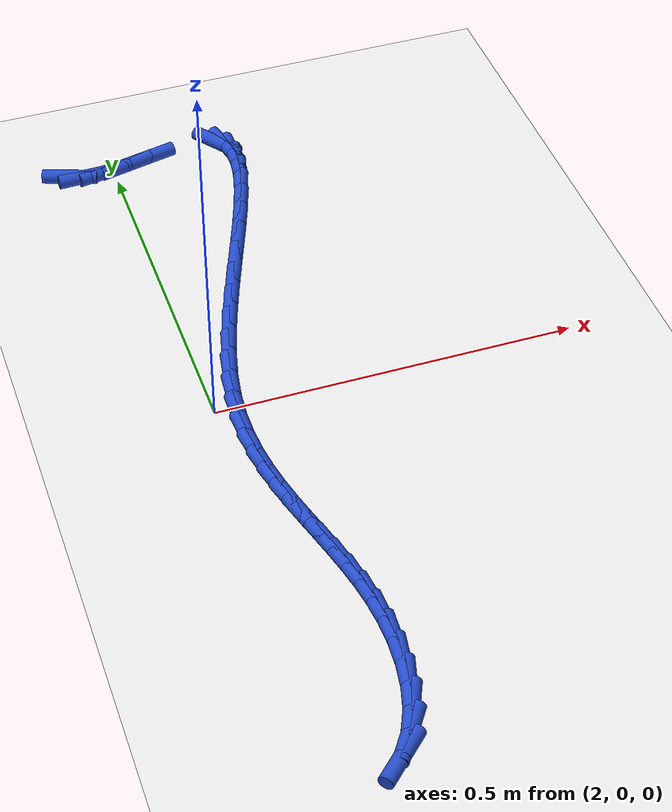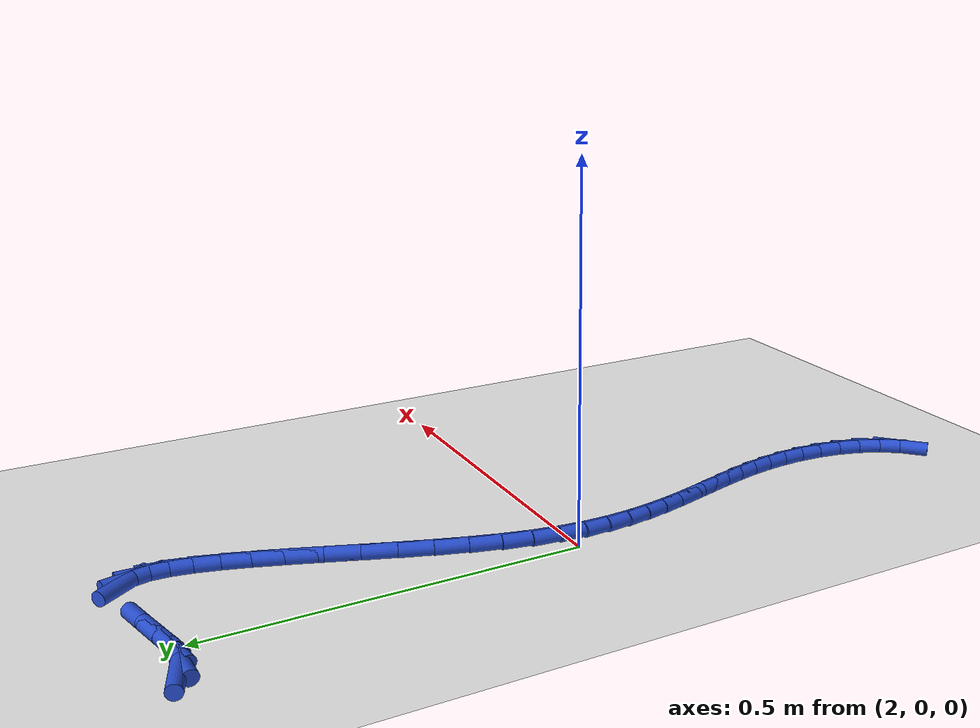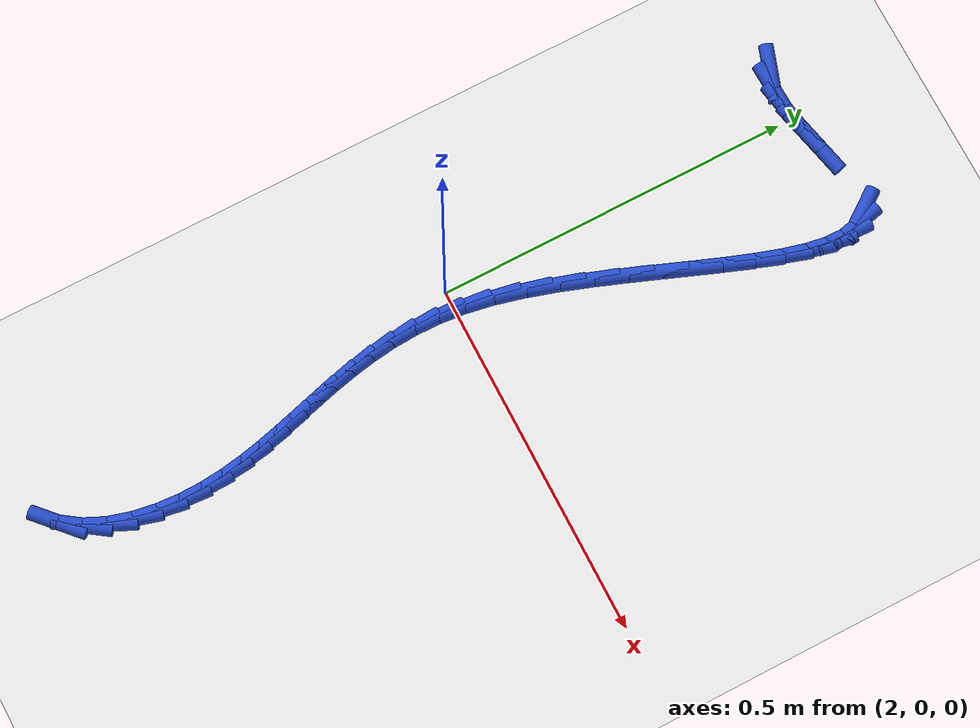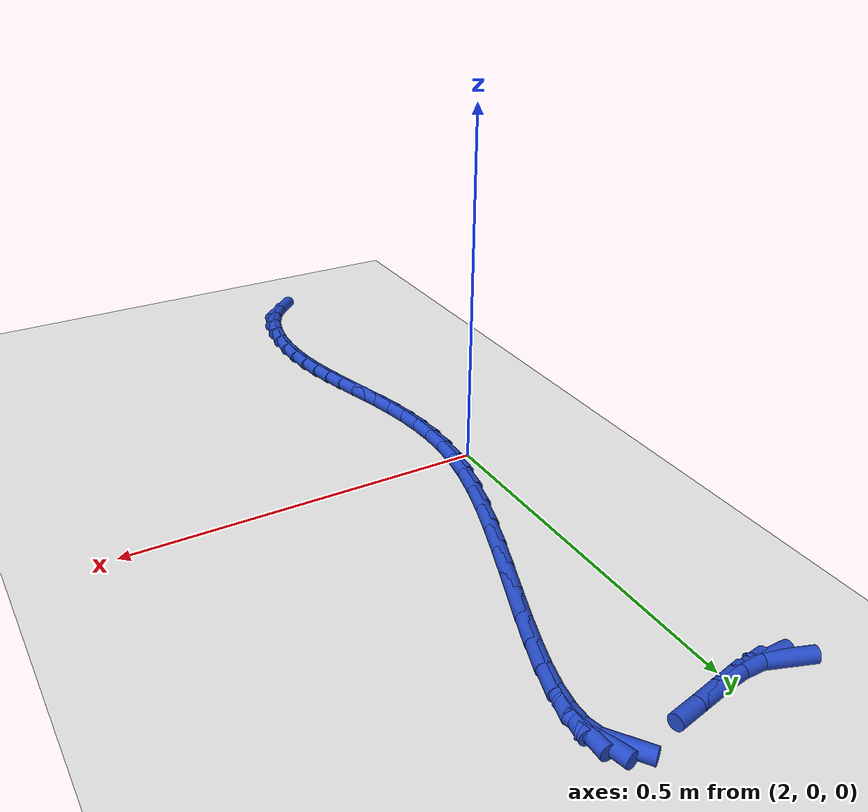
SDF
<sdf version="1.6">
 <world name="default">
  <model name="ground_plane">
   <static>1</static>
   <link name="link">
    <collision name="collision">
     <geometry><plane><normal>0 0 1</normal><size>100 100</size></plane></geometry>
     <surface><friction><ode><mu>100</mu><mu2>50</mu2></ode></friction></surface>
    </collision>
    <visual name="visual">
     <cast_shadows>0</cast_shadows>
     <geometry><plane><normal>0 0 1</normal><size>100 100</size></plane></geometry>
     <material>
      <script><uri>file://media/materials/scripts/gazebo.material</uri><name>Gazebo/WhiteGlow</name></script>
     </material>
    </visual>
   </link>
  </model>
  <model name="line">
   <link name="link_96">
    <pose>1.9337608960405697 0.5235101013731505 0.01 0 1.57 -0.3344039764433483</pose>
    <collision name="collision">
     <geometry><cylinder><radius>0.01</radius><length>0.08</length></cylinder></geometry>
    </collision>
    <visual name="visual">
     <material>
      <script><name>Gazebo/Blue</name><uri>file://media/materials/scripts/gazebo.material</uri></script>
     </material>
     <geometry><cylinder><radius>0.01</radius><length>0.08</length></cylinder></geometry>
    </visual>
   </link>
   <link name="link_97">
    <pose>1.9553031743161284 0.5160251721861439 0.01 0 1.57 0.023197153051160827</pose>
    <collision name="collision">
     <geometry><cylinder><radius>0.01</radius><length>0.08</length></cylinder></geometry>
    </collision>
    <visual name="visual">
     <material>
      <script><name>Gazebo/Blue</name><uri>file://media/materials/scripts/gazebo.material</uri></script>
     </material>
     <geometry><cylinder><radius>0.01</radius><length>0.08</length></cylinder></geometry>
    </visual>
   </link>
   <link name="link_98">
    <pose>1.9846540551637126 0.5167061512124672 0.01 0 1.57 0.17221469607655193</pose>
    <collision name="collision">
     <geometry><cylinder><radius>0.01</radius><length>0.08</length></cylinder></geometry>
    </collision>
    <visual name="visual">
     <material>
      <script><name>Gazebo/Blue</name><uri>file://media/materials/scripts/gazebo.material</uri></script>
     </material>
     <geometry><cylinder><radius>0.01</radius><length>0.08</length></cylinder></geometry>
    </visual>
   </link>
   <link name="link_99">
    <pose>2.0188290393591095 0.522650467565038 0.01 0 1.57 0.22620210388771186</pose>
    <collision name="collision">
     <geometry><cylinder><radius>0.01</radius><length>0.08</length></cylinder></geometry>
    </collision>
    <visual name="visual">
     <material>
      <script><name>Gazebo/Blue</name><uri>file://media/materials/scripts/gazebo.material</uri></script>
     </material>
     <geometry><cylinder><radius>0.01</radius><length>0.08</length></cylinder></geometry>
    </visual>
   </link>
   <link name="link_100">
    <pose>2.054819492721754 0.5309333390709774 0.01 0 1.57 0.2176804888692819</pose>
    <collision name="collision">
     <geometry><cylinder><radius>0.01</radius><length>0.08</length></cylinder></geometry>
    </collision>
    <visual name="visual">
     <material>
      <script><name>Gazebo/Blue</name><uri>file://media/materials/scripts/gazebo.material</uri></script>
     </material>
     <geometry><cylinder><radius>0.01</radius><length>0.08</length></cylinder></geometry>
    </visual>
   </link>
   <link name="link_104">
    <pose>2.1606644630583784 0.5326191293171222 0.01 0 1.57 -0.9420285430388501</pose>
    <collision name="collision">
     <geometry><cylinder><radius>0.01</radius><length>0.08</length></cylinder></geometry>
    </collision>
    <visual name="visual">
     <material>
      <script><name>Gazebo/Blue</name><uri>file://media/materials/scripts/gazebo.material</uri></script>
     </material>
     <geometry><cylinder><radius>0.01</radius><length>0.08</length></cylinder></geometry>
    </visual>
   </link>
   <link name="link_105">
    <pose>2.1709644000544177 0.5184558672973515 0.01 0 1.57 -1.3389137282480488</pose>
    <collision name="collision">
     <geometry><cylinder><radius>0.01</radius><length>0.08</length></cylinder></geometry>
    </collision>
    <visual name="visual">
     <material>
      <script><name>Gazebo/Blue</name><uri>file://media/materials/scripts/gazebo.material</uri></script>
     </material>
     <geometry><cylinder><radius>0.01</radius><length>0.08</length></cylinder></geometry>
    </visual>
   </link>
   <link name="link_106">
    <pose>2.175563557976643 0.498978643013999 0.01 0 1.57 1.5537375964672842</pose>
    <collision name="collision">
     <geometry><cylinder><radius>0.01</radius><length>0.08</length></cylinder></geometry>
    </collision>
    <visual name="visual">
     <material>
      <script><name>Gazebo/Blue</name><uri>file://media/materials/scripts/gazebo.material</uri></script>
     </material>
     <geometry><cylinder><radius>0.01</radius><length>0.08</length></cylinder></geometry>
    </visual>
   </link>
   <link name="link_107">
    <pose>2.175149951770511 0.4747349814066913 0.01 0 1.57 1.405832487593542</pose>
    <collision name="collision">
     <geometry><cylinder><radius>0.01</radius><length>0.08</length></cylinder></geometry>
    </collision>
    <visual name="visual">
     <material>
      <script><name>Gazebo/Blue</name><uri>file://media/materials/scripts/gazebo.material</uri></script>
     </material>
     <geometry><cylinder><radius>0.01</radius><length>0.08</length></cylinder></geometry>
    </visual>
   </link>
   <link name="link_108">
    <pose>2.170411596381479 0.44627240741505475 0.01 0 1.57 1.3158378055779596</pose>
    <collision name="collision">
     <geometry><cylinder><radius>0.01</radius><length>0.08</length></cylinder></geometry>
    </collision>
    <visual name="visual">
     <material>
      <script><name>Gazebo/Blue</name><uri>file://media/materials/scripts/gazebo.material</uri></script>
     </material>
     <geometry><cylinder><radius>0.01</radius><length>0.08</length></cylinder></geometry>
    </visual>
   </link>
   <link name="link_109">
    <pose>2.162036506755003 0.4141384459787166 0.01 0 1.57 1.260031044059633</pose>
    <collision name="collision">
     <geometry><cylinder><radius>0.01</radius><length>0.08</length></cylinder></geometry>
    </collision>
    <visual name="visual">
     <material>
      <script><name>Gazebo/Blue</name><uri>file://media/materials/scripts/gazebo.material</uri></script>
     </material>
     <geometry><cylinder><radius>0.01</radius><length>0.08</length></cylinder></geometry>
    </visual>
   </link>
   <link name="link_110">
    <pose>2.150712697836539 0.37888062203730316 0.01 0 1.57 1.2260783170879772</pose>
    <collision name="collision">
     <geometry><cylinder><radius>0.01</radius><length>0.08</length></cylinder></geometry>
    </collision>
    <visual name="visual">
     <material>
      <script><name>Gazebo/Blue</name><uri>file://media/materials/scripts/gazebo.material</uri></script>
     </material>
     <geometry><cylinder><radius>0.01</radius><length>0.08</length></cylinder></geometry>
    </visual>
   </link>
   <link name="link_111">
    <pose>2.1371281845715444 0.3410464605304411 0.01 0 1.57 1.207446073874159</pose>
    <collision name="collision">
     <geometry><cylinder><radius>0.01</radius><length>0.08</length></cylinder></geometry>
    </collision>
    <visual name="visual">
     <material>
      <script><name>Gazebo/Blue</name><uri>file://media/materials/scripts/gazebo.material</uri></script>
     </material>
     <geometry><cylinder><radius>0.01</radius><length>0.08</length></cylinder></geometry>
    </visual>
   </link>
   <link name="link_112">
    <pose>2.1219709819054757 0.3011834863977564 0.01 0 1.57 1.2006710066758675</pose>
    <collision name="collision">
     <geometry><cylinder><radius>0.01</radius><length>0.08</length></cylinder></geometry>
    </collision>
    <visual name="visual">
     <material>
      <script><name>Gazebo/Blue</name><uri>file://media/materials/scripts/gazebo.material</uri></script>
     </material>
     <geometry><cylinder><radius>0.01</radius><length>0.08</length></cylinder></geometry>
    </visual>
   </link>
   <link name="link_113">
    <pose>2.1059291047837894 0.25983922457887687 0.01 0 1.57 1.2040808686634246</pose>
    <collision name="collision">
     <geometry><cylinder><radius>0.01</radius><length>0.08</length></cylinder></geometry>
    </collision>
    <visual name="visual">
     <material>
      <script><name>Gazebo/Blue</name><uri>file://media/materials/scripts/gazebo.material</uri></script>
     </material>
     <geometry><cylinder><radius>0.01</radius><length>0.08</length></cylinder></geometry>
    </visual>
   </link>
   <link name="link_114">
    <pose>2.0896905681519424 0.2175612000134286 0.01 0 1.57 1.2172123511746096</pose>
    <collision name="collision">
     <geometry><cylinder><radius>0.01</radius><length>0.08</length></cylinder></geometry>
    </collision>
    <visual name="visual">
     <material>
      <script><name>Gazebo/Blue</name><uri>file://media/materials/scripts/gazebo.material</uri></script>
     </material>
     <geometry><cylinder><radius>0.01</radius><length>0.08</length></cylinder></geometry>
    </visual>
   </link>
   <link name="link_115">
    <pose>2.07394338695539 0.1748969376410376 0.01 0 1.57 1.2405966154802832</pose>
    <collision name="collision">
     <geometry><cylinder><radius>0.01</radius><length>0.08</length></cylinder></geometry>
    </collision>
    <visual name="visual">
     <material>
      <script><name>Gazebo/Blue</name><uri>file://media/materials/scripts/gazebo.material</uri></script>
     </material>
     <geometry><cylinder><radius>0.01</radius><length>0.08</length></cylinder></geometry>
    </visual>
   </link>
   <link name="link_116">
    <pose>2.05937557613959 0.13239396240133164 0.01 0 1.57 1.27578337887542</pose>
    <collision name="collision">
     <geometry><cylinder><radius>0.01</radius><length>0.08</length></cylinder></geometry>
    </collision>
    <visual name="visual">
     <material>
      <script><name>Gazebo/Blue</name><uri>file://media/materials/scripts/gazebo.material</uri></script>
     </material>
     <geometry><cylinder><radius>0.01</radius><length>0.08</length></cylinder></geometry>
    </visual>
   </link>
   <link name="link_117">
    <pose>2.046675150649999 0.09059979923393677 0.01 0 1.57 1.3255723031578113</pose>
    <collision name="collision">
     <geometry><cylinder><radius>0.01</radius><length>0.08</length></cylinder></geometry>
    </collision>
    <visual name="visual">
     <material>
      <script><name>Gazebo/Blue</name><uri>file://media/materials/scripts/gazebo.material</uri></script>
     </material>
     <geometry><cylinder><radius>0.01</radius><length>0.08</length></cylinder></geometry>
    </visual>
   </link>
   <link name="link_118">
    <pose>2.036530125432073 0.05006197307847965 0.01 0 1.57 1.394156634752904</pose>
    <collision name="collision">
     <geometry><cylinder><radius>0.01</radius><length>0.08</length></cylinder></geometry>
    </collision>
    <visual name="visual">
     <material>
      <script><name>Gazebo/Blue</name><uri>file://media/materials/scripts/gazebo.material</uri></script>
     </material>
     <geometry><cylinder><radius>0.01</radius><length>0.08</length></cylinder></geometry>
    </visual>
   </link>
   <link name="link_119">
    <pose>2.029614357617246 0.011318188806445587 0.01 0 1.57 1.4758567685952193</pose>
    <collision name="collision">
     <geometry><cylinder><radius>0.01</radius><length>0.08</length></cylinder></geometry>
    </collision>
    <visual name="visual">
     <material>
      <script><name>Gazebo/Blue</name><uri>file://media/materials/scripts/gazebo.material</uri></script>
     </material>
     <geometry><cylinder><radius>0.01</radius><length>0.08</length></cylinder></geometry>
    </visual>
   </link>
   <link name="link_120">
    <pose>2.026114832998405 -0.02543154983548338 0.01 0 1.57 1.556662829310497</pose>
    <collision name="collision">
     <geometry><cylinder><radius>0.01</radius><length>0.08</length></cylinder></geometry>
    </collision>
    <visual name="visual">
     <material>
      <script><name>Gazebo/Blue</name><uri>file://media/materials/scripts/gazebo.material</uri></script>
     </material>
     <geometry><cylinder><radius>0.01</radius><length>0.08</length></cylinder></geometry>
    </visual>
   </link>
   <link name="link_121">
    <pose>2.025620545099476 -0.06040201533792897 0.01 0 1.57 -1.5091581185594227</pose>
    <collision name="collision">
     <geometry><cylinder><radius>0.01</radius><length>0.08</length></cylinder></geometry>
    </collision>
    <visual name="visual">
     <material>
      <script><name>Gazebo/Blue</name><uri>file://media/materials/scripts/gazebo.material</uri></script>
     </material>
     <geometry><cylinder><radius>0.01</radius><length>0.08</length></cylinder></geometry>
    </visual>
   </link>
   <link name="link_122">
    <pose>2.02768381059758 -0.0938334197921622 0.01 0 1.57 -1.4416466979405065</pose>
    <collision name="collision">
     <geometry><cylinder><radius>0.01</radius><length>0.08</length></cylinder></geometry>
    </collision>
    <visual name="visual">
     <material>
      <script><name>Gazebo/Blue</name><uri>file://media/materials/scripts/gazebo.material</uri></script>
     </material>
     <geometry><cylinder><radius>0.01</radius><length>0.08</length></cylinder></geometry>
    </visual>
   </link>
   <link name="link_123">
    <pose>2.0318569461698366 -0.12596597528945427 0.01 0 1.57 -1.3851697592821275</pose>
    <collision name="collision">
     <geometry><cylinder><radius>0.01</radius><length>0.08</length></cylinder></geometry>
    </collision>
    <visual name="visual">
     <material>
      <script><name>Gazebo/Blue</name><uri>file://media/materials/scripts/gazebo.material</uri></script>
     </material>
     <geometry><cylinder><radius>0.01</radius><length>0.08</length></cylinder></geometry>
    </visual>
   </link>
   <link name="link_124">
    <pose>2.0376922684933683 -0.15703989392107634 0.01 0 1.57 -1.3418712694439916</pose>
    <collision name="collision">
     <geometry><cylinder><radius>0.01</radius><length>0.08</length></cylinder></geometry>
    </collision>
    <visual name="visual">
     <material>
      <script><name>Gazebo/Blue</name><uri>file://media/materials/scripts/gazebo.material</uri></script>
     </material>
     <geometry><cylinder><radius>0.01</radius><length>0.08</length></cylinder></geometry>
    </visual>
   </link>
   <link name="link_125">
    <pose>2.044742094245295 -0.18729538777830027 0.01 0 1.57 -1.3132572289887232</pose>
    <collision name="collision">
     <geometry><cylinder><radius>0.01</radius><length>0.08</length></cylinder></geometry>
    </collision>
    <visual name="visual">
     <material>
      <script><name>Gazebo/Blue</name><uri>file://media/materials/scripts/gazebo.material</uri></script>
     </material>
     <geometry><cylinder><radius>0.01</radius><length>0.08</length></cylinder></geometry>
    </visual>
   </link>
   <link name="link_126">
    <pose>2.0525587401027368 -0.21697266895239567 0.01 0 1.57 -1.3002930798316519</pose>
    <collision name="collision">
     <geometry><cylinder><radius>0.01</radius><length>0.08</length></cylinder></geometry>
    </collision>
    <visual name="visual">
     <material>
      <script><name>Gazebo/Blue</name><uri>file://media/materials/scripts/gazebo.material</uri></script>
     </material>
     <geometry><cylinder><radius>0.01</radius><length>0.08</length></cylinder></geometry>
    </visual>
   </link>
   <link name="link_127">
    <pose>2.0606945227428146 -0.24631194953463434 0.01 0 1.57 -1.30351696146019</pose>
    <collision name="collision">
     <geometry><cylinder><radius>0.01</radius><length>0.08</length></cylinder></geometry>
    </collision>
    <visual name="visual">
     <material>
      <script><name>Gazebo/Blue</name><uri>file://media/materials/scripts/gazebo.material</uri></script>
     </material>
     <geometry><cylinder><radius>0.01</radius><length>0.08</length></cylinder></geometry>
    </visual>
   </link>
   <link name="link_128">
    <pose>2.0687017588426486 -0.27555344161628753 0.01 0 1.57 -1.3230960704808596</pose>
    <collision name="collision">
     <geometry><cylinder><radius>0.01</radius><length>0.08</length></cylinder></geometry>
    </collision>
    <visual name="visual">
     <material>
      <script><name>Gazebo/Blue</name><uri>file://media/materials/scripts/gazebo.material</uri></script>
     </material>
     <geometry><cylinder><radius>0.01</radius><length>0.08</length></cylinder></geometry>
    </visual>
   </link>
   <link name="link_129">
    <pose>2.076132765079361 -0.30493735728862637 0.01 0 1.57 -1.3587862696665312</pose>
    <collision name="collision">
     <geometry><cylinder><radius>0.01</radius><length>0.08</length></cylinder></geometry>
    </collision>
    <visual name="visual">
     <material>
      <script><name>Gazebo/Blue</name><uri>file://media/materials/scripts/gazebo.material</uri></script>
     </material>
     <geometry><cylinder><radius>0.01</radius><length>0.08</length></cylinder></geometry>
    </visual>
   </link>
   <link name="link_130">
    <pose>2.0825398581300707 -0.3347039086429219 0.01 0 1.57 -1.409793575512483</pose>
    <collision name="collision">
     <geometry><cylinder><radius>0.01</radius><length>0.08</length></cylinder></geometry>
    </collision>
    <visual name="visual">
     <material>
      <script><name>Gazebo/Blue</name><uri>file://media/materials/scripts/gazebo.material</uri></script>
     </material>
     <geometry><cylinder><radius>0.01</radius><length>0.08</length></cylinder></geometry>
    </visual>
   </link>
   <link name="link_131">
    <pose>2.087475354671899 -0.3650933077704453 0.01 0 1.57 -1.474582972412233</pose>
    <collision name="collision">
     <geometry><cylinder><radius>0.01</radius><length>0.08</length></cylinder></geometry>
    </collision>
    <visual name="visual">
     <material>
      <script><name>Gazebo/Blue</name><uri>file://media/materials/scripts/gazebo.material</uri></script>
     </material>
     <geometry><cylinder><radius>0.01</radius><length>0.08</length></cylinder></geometry>
    </visual>
   </link>
   <link name="link_132">
    <pose>2.0904915713819676 -0.3963457667624686 0.01 0 1.57 -1.550730441385922</pose>
    <collision name="collision">
     <geometry><cylinder><radius>0.01</radius><length>0.08</length></cylinder></geometry>
    </collision>
    <visual name="visual">
     <material>
      <script><name>Gazebo/Blue</name><uri>file://media/materials/scripts/gazebo.material</uri></script>
     </material>
     <geometry><cylinder><radius>0.01</radius><length>0.08</length></cylinder></geometry>
    </visual>
   </link>
   <link name="link_133">
    <pose>2.0911408317924773 -0.428697853679544 0.01 0 1.57 1.5057853805288204</pose>
    <collision name="collision">
     <geometry><cylinder><radius>0.01</radius><length>0.08</length></cylinder></geometry>
    </collision>
    <visual name="visual">
     <material>
      <script><name>Gazebo/Blue</name><uri>file://media/materials/scripts/gazebo.material</uri></script>
     </material>
     <geometry><cylinder><radius>0.01</radius><length>0.08</length></cylinder></geometry>
    </visual>
   </link>
   <link name="link_134">
    <pose>2.088976287393164 -0.4619460101371953 0.01 0 1.57 1.4083188223152538</pose>
    <collision name="collision">
     <geometry><cylinder><radius>0.01</radius><length>0.08</length></cylinder></geometry>
    </collision>
    <visual name="visual">
     <material>
      <script><name>Gazebo/Blue</name><uri>file://media/materials/scripts/gazebo.material</uri></script>
     </material>
     <geometry><cylinder><radius>0.01</radius><length>0.08</length></cylinder></geometry>
    </visual>
   </link>
   <link name="link_135">
    <pose>2.083552696880376 -0.49503231734780984 0.01 0 1.57 1.2910131892619316</pose>
    <collision name="collision">
     <geometry><cylinder><radius>0.01</radius><length>0.08</length></cylinder></geometry>
    </collision>
    <visual name="visual">
     <material>
      <script><name>Gazebo/Blue</name><uri>file://media/materials/scripts/gazebo.material</uri></script>
     </material>
     <geometry><cylinder><radius>0.01</radius><length>0.08</length></cylinder></geometry>
    </visual>
   </link>
   <link name="link_136">
    <pose>2.0744250034952345 -0.5268007560394079 0.01 0 1.57 1.1452685361908137</pose>
    <collision name="collision">
     <geometry><cylinder><radius>0.01</radius><length>0.08</length></cylinder></geometry>
    </collision>
    <visual name="visual">
     <material>
      <script><name>Gazebo/Blue</name><uri>file://media/materials/scripts/gazebo.material</uri></script>
     </material>
     <geometry><cylinder><radius>0.01</radius><length>0.08</length></cylinder></geometry>
    </visual>
   </link>
   <link name="link_137">
    <pose>2.06114815047886 -0.55609530694001 0.01 0 1.57 0.9625374897858336</pose>
    <collision name="collision">
     <geometry><cylinder><radius>0.01</radius><length>0.08</length></cylinder></geometry>
    </collision>
    <visual name="visual">
     <material>
      <script><name>Gazebo/Blue</name><uri>file://media/materials/scripts/gazebo.material</uri></script>
     </material>
     <geometry><cylinder><radius>0.01</radius><length>0.08</length></cylinder></geometry>
    </visual>
   </link>
   <link name="link_138">
    <pose>2.043277081072372 -0.5817599507776354 0.01 0 1.57 0.7452127688251937</pose>
    <collision name="collision">
     <geometry><cylinder><radius>0.01</radius><length>0.08</length></cylinder></geometry>
    </collision>
    <visual name="visual">
     <material>
      <script><name>Gazebo/Blue</name><uri>file://media/materials/scripts/gazebo.material</uri></script>
     </material>
     <geometry><cylinder><radius>0.01</radius><length>0.08</length></cylinder></geometry>
    </visual>
   </link>
  </model>
 </world>
</sdf>
